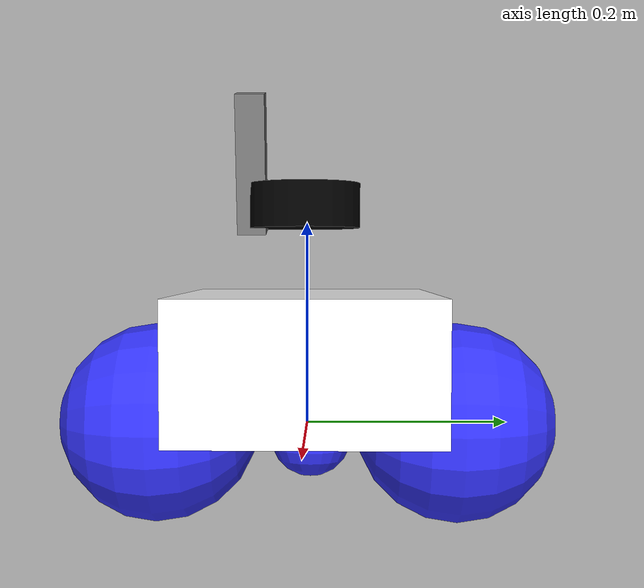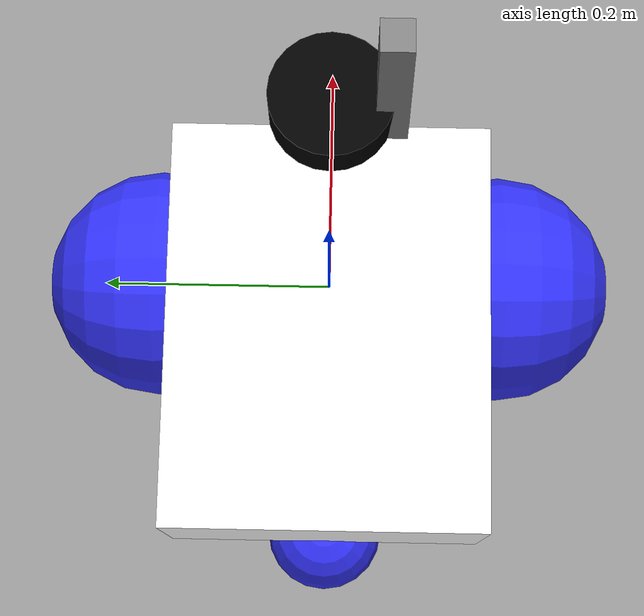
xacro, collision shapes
<?xml version="1.0" ?>
<robot name='robot' xmlns:xacro="http://ros.org/wiki/xacro">

    <xacro:include filename="$(find robot_description_sensor)/urdf/gazebo.urdf.xacro" />
    <xacro:include filename="$(find robot_description_sensor)/urdf/lidar.urdf.xacro" />
    <xacro:include filename="$(find robot_description_sensor)/urdf/depth.urdf.xacro" />
    <xacro:include filename="$(find robot_description_sensor)/urdf/imu.urdf.xacro" />
    <!--xacro:include filename="$(find robot_description)/urdf/lidar.urdf.xacro" /-->
    <!--xacro:include filename="$(find robot_description)/urdf/depth.urdf.xacro" /-->

    <xacro:property name="chassis_length" value="0.335"/>
    <xacro:property name="chassis_width" value="0.265"/>
    <xacro:property name="chassis_height" value="0.138"/>
    <xacro:property name="wheel_radius" value="0.1"/>
    <xacro:property name="wheel_thickness" value="0.026"/>
    <xacro:property name="wheel_mass" value="0.05"/>
    <xacro:property name="wheel_offset_x" value="0.226"/>
    <xacro:property name="wheel_offset_y" value="0.1485"/>
    <xacro:property name="wheel_offset_z" value="0.01"/>
    <xacro:property name="caster_wheel_radius" value="0.05"/>
    <xacro:property name="caster_wheel_mass" value="0.01"/>
    <xacro:property name="caster_wheel_offset_x" value="0.01"/>
    <xacro:property name="caster_wheel_offset_z" value="${wheel_offset_z - wheel_radius + caster_wheel_radius}"/>
    <xacro:property name="mass" value="1.0"/>

    <material name="white">
        <color rgba="1 1 1 1" />
    </material>

    <material name="orange">
        <color rgba="1 0.3 0.1 1"/>
    </material>

    <material name="blue">
        <color rgba="0.2 0.2 1 1"/>
    </material>

    <material name="black">
        <color rgba="0 0 0 1"/>
    </material>

    <material name="red">
        <color rgba="1 0 0 1"/>
    </material>

    <link name="base_link">
    </link>

    <link name="base_footprint">
    </link>

    <joint name="base_footprint_joint" type="fixed">
        <parent link="base_link"/>
        <child link="base_footprint"/>
        <origin xyz="0 0 -0.138" rpy="0 0 0"/>
    </joint>

    <joint name="chassis_joint" type="fixed">
        <parent link="base_link"/>
        <child link="chassis"/>
        <origin xyz="${-wheel_offset_x} 0 ${-wheel_offset_z}"/>
    </joint>

    <link name='chassis'>

    <inertial>
        <origin xyz="${chassis_length/2} 0 ${chassis_height/2}" rpy="0 0 0"/>
        <mass value="${mass}" />
        <inertia ixx="${(1/12) * mass * (chassis_width*chassis_width+chassis_height*chassis_height)}" ixy="0.0" ixz="0.0"
                 iyy="${(1/12) * mass * (chassis_length*chassis_length+chassis_height*chassis_height)}" iyz="0.0"
                 izz="${(1/12) * mass * (chassis_length*chassis_length+chassis_width*chassis_width)}" />
    </inertial>
    <visual>
        <origin xyz="${chassis_length/3} 0 ${chassis_height/2}"/>
        <geometry>
            <box size="${chassis_length} ${chassis_width} ${chassis_height}"/>
        </geometry>
        <material name="white"/>
    </visual>
    <collision>
        <origin xyz="${chassis_length/2} 0 ${chassis_height/2}"/>
        <geometry>
            <box size="${chassis_length} ${chassis_width} ${chassis_height}"/>
        </geometry>
    </collision>
    </link>

    <gazebo reference="chassis">
        <material>Gazebo/Orange</material>
    </gazebo>

    <joint name="left_wheel_joint" type="continuous">
        <parent link="base_link"/>
        <child link="left_wheel"/>
        <origin xyz="0 ${wheel_offset_y} 0" rpy="-${pi/2} 0 0" />
        <axis xyz="0 0 1"/>
    </joint>

    <link name="left_wheel">
        <visual>
            <geometry>
                <cylinder radius="${wheel_radius}" length="${wheel_thickness}"/>
            </geometry>
            <material name="blue"/>
        </visual>
        <collision>
            <geometry> length="0.04
                <sphere radius="${wheel_radius}"/>
            </geometry>
        </collision>
        <inertial>
            <origin xyz="0 0 0" rpy="0 0 0"/>
            <mass value="${wheel_mass}" />
            <inertia ixx="${(1/12) * wheel_mass * (3*wheel_radius*wheel_radius + wheel_thickness*wheel_thickness)}" ixy="0.0" ixz="0.0"
                     iyy="${(1/12) * wheel_mass * (3*wheel_radius*wheel_radius + wheel_thickness*wheel_thickness)}" iyz="0.0"
                     izz="${(1/2) * wheel_mass * (wheel_radius*wheel_radius)}" />
        </inertial>
    </link>

    <joint name="right_wheel_joint" type="continuous">
        <parent link="base_link"/>
        <child link="right_wheel"/>
        <origin xyz="0 ${-wheel_offset_y} 0" rpy="${pi/2} 0 0" />
        <axis xyz="0 0 -1"/>
    </joint>

    <link name="right_wheel">
        <visual>
            <geometry>
                <cylinder radius="${wheel_radius}" length="${wheel_thickness}"/>
            </geometry>
            <material name="blue"/>
        </visual>
        <collision>
            <geometry>
                <sphere radius="${wheel_radius}"/>
            </geometry>
        </collision>
        <inertial>
            <origin xyz="0 0 0" rpy="0 0 0"/>
            <mass value="${wheel_mass}" />
            <inertia ixx="${(1/12) * wheel_mass * (3*wheel_radius*wheel_radius + wheel_thickness*wheel_thickness)}" ixy="0.0" ixz="0.0"
                     iyy="${(1/12) * wheel_mass * (3*wheel_radius*wheel_radius + wheel_thickness*wheel_thickness)}" iyz="0.0"
                     izz="${(1/2) * wheel_mass * (wheel_radius*wheel_radius)}" />
        </inertial>
    </link>

    <gazebo reference="right_wheel">
        <material>Gazebo/Blue</material>
    </gazebo>

    <joint name="caster_wheel_joint" type="fixed">
        <parent link="chassis"/>
        <child link="caster_wheel"/>
        <origin xyz="${caster_wheel_offset_x} 0 ${caster_wheel_offset_z}"/>
    </joint>

    <link name="caster_wheel">
        <visual>
            <geometry>
                <sphere radius="${caster_wheel_radius}"/>
            </geometry>
            <material name="blue"/>
        </visual>
        <collision>
            <geometry>
                <sphere radius="${caster_wheel_radius}"/>
            </geometry>
        </collision>
        <inertial>
            <origin xyz="0 0 0" rpy="0 0 0"/>
            <mass value="${caster_wheel_mass}" />
            <inertia ixx="${(2/5) * caster_wheel_mass * (caster_wheel_radius*caster_wheel_radius)}" ixy="0.0" ixz="0.0"
                     iyy="${(2/5) * caster_wheel_mass * (caster_wheel_radius*caster_wheel_radius)}" iyz="0.0"
                     izz="${(2/5) * caster_wheel_mass * (caster_wheel_radius*caster_wheel_radius)}" />
        </inertial>
    </link>

    <gazebo reference="caster_wheel">
        <material>Gazebo/White</material>
        <mu1 value="0.001"/>
        <mu2 value="0.001"/>
    </gazebo>

    <link name="vasa_link">
        <visual>
            <geometry>
                <mesh filename="/home/mar/ros2_ws2/install/unique_robot/share/unique_robot/urdf/vasa.stl"/>
            </geometry>
            <material name="red"/>
        </visual>
        <inertial>
            <origin xyz="0 0 0" rpy="0 0 0"/>
            <mass value="0.116" />
            <inertia ixx="${(1/12) * 0.116 * (0.026*0.026+0.029*0.029)}" ixy="0.0" ixz="0.0"
                     iyy="${(1/12) * 0.116 * (0.124*0.124+0.029*0.029)}" iyz="0.0"
                     izz="${(1/12) * 0.116 * (0.124*0.124+0.026*0.026)}" />
        </inertial>
    <!-- Остальные параметры звена, такие как инерция, масса и т.д., также могут быть указаны здесь -->
    </link>

    <joint name="base_to_vasa_joint" type="fixed">
        <parent link="base_link"/>
        <child link="vasa_link"/>
        <origin xyz="-0.15 0 ${(chassis_height+wheel_radius)/2}"/>
        <!-- Другие параметры сочленения -->
    </joint>
    <gazebo reference="vasa_link">
        <material>Gazebo/White</material>
        <mu1 value="0.001"/>
        <mu2 value="0.001"/>
    </gazebo>

</robot>

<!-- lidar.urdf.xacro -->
<robot xmlns:xacro="http://www.ros.org/wiki/xacro">

    <joint name="laser_joint" type="fixed">
        <parent link="base_link"/>
        <child link="laser_frame"/>
        <origin xyz="0.1 0 0.212" rpy="0 0 0"/>
    </joint>

    <link name="laser_frame">
        <visual>
            <origin xyz="-0.07 0 -0.01"/>
            <geometry>
                <cylinder radius="0.05" length="0.04"/>
            </geometry>
            <material name="black"/>
        </visual>
        <visual>
            <origin xyz="-0.07 0 -0.05"/>
            <geometry>
                <cylinder radius="0.01" length="0.1"/>
            </geometry>
            <material name="black"/>
        </visual>
        <collision>
            <geometry>
                <cylinder radius="0.05" length="0.04"/>
            </geometry>
        </collision>
        <inertial>
            <origin xyz="0 0 0" rpy="0 0 0"/>
            <mass value="0.1" />
            <inertia ixx="${(1/12) * 0.1 * (3*0.05*0.05 + 0.04*0.04)}" ixy="0.0" ixz="0.0"
                     iyy="${(1/12) * 0.1 * (3*0.05*0.05 + 0.04*0.04)}" iyz="0.0"
                     izz="${(1/2) * 0.1 * (0.05*0.05)}" />
        </inertial>
    </link>

    <gazebo reference="laser_frame">
        <material>Gazebo/Black</material>

        <sensor name='laser_sensor_frame' type='gpu_lidar'>"
            <gz_frame_id>robot/laser_frame</gz_frame_id>
            <pose> 0 0 0 0 0 0 </pose>
            <visualize>true</visualize>
            <always_on>true</always_on>
            <update_rate>10</update_rate>
            <ray>
                <scan>
                    <horizontal>
                        <samples>360</samples>
                        <min_angle>-3.14</min_angle>
                        <max_angle>3.14</max_angle>
                    </horizontal>
                </scan>
                <range>
                    <min>0.3</min>
                    <max>12</max>
                </range>
                <noise>
                    <type>gaussian</type>
                    <mean>0.0</mean>
                    <stddev>0.007</stddev>
                </noise>
            </ray>
        </sensor>
    </gazebo>
</robot>

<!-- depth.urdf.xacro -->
<robot xmlns:xacro="http://www.ros.org/wiki/xacro">

    <xacro:property name="M_PI" value="3.1415926535897931" />

    <joint name="depth_joint" type="fixed">
        <parent link="base_link"/>
        <child link="depth_frame"/>
        <origin xyz="0.1 0 0.25" rpy="0 0.2 0"/>
    </joint>

    <material name="aluminum">
      <color rgba="0.5 0.5 0.5 1"/>
    </material>

    <link name="depth_frame">
        <visual>
            <origin xyz="-0.0465 0 -0.03" rpy="${M_PI/2} 0 ${M_PI/2}"/>
            <geometry>
                <mesh filename="file://$(find robot_description_sensor)/urdf/d455.stl" scale="0.001 0.001 0.001"/>
                <!--box size="0.026 0.124 0.029"/-->
            </geometry>
            <material name="aluminum"/>
        </visual>
        <collision>
            <origin xyz="0.00465 -0.0475 0" rpy="${M_PI/2} 0 ${M_PI/2}"/>
            <geometry>
                <box size="0.026 0.124 0.029"/>
            </geometry>
        </collision>
        <inertial>
            <origin xyz="0 0 0" rpy="0 0 0"/>
            <mass value="0.116" />
            <inertia ixx="${(1/12) * 0.116 * (0.026*0.026+0.029*0.029)}" ixy="0.0" ixz="0.0"
                     iyy="${(1/12) * 0.116 * (0.124*0.124+0.029*0.029)}" iyz="0.0"
                     izz="${(1/12) * 0.116 * (0.124*0.124+0.026*0.026)}" />
        </inertial>
    </link>

    <gazebo reference="depth_frame">
        <sensor name='depth_sensor_frame' type='depth_camera'>"
            <gz_frame_id>robot/depth_frame</gz_frame_id>
            <pose> 0 0 0 0 0 0 </pose>
            <always_on>true</always_on>
            <update_rate>10</update_rate>
            <camera>
                <horizontal_fov>1.51843645</horizontal_fov>
                <image>
                    <width>848</width>
                    <height>480</height>
                    <format>R_FLOAT32</format>
                </image>
                <clip>
                    <near>0.1</near>
                    <far>10</far>
                </clip>
                <lens>
                    <intrinsics>
                    <fx>421.61578369140625</fx>
                    <fy>421.61578369140625</fy>
                    <cx>422.2854309082031</cx>
                    <cy>236.57237243652344</cy>
                    <s>0</s>
                    </intrinsics>
                </lens>
                <noise>
                    <type>gaussian</type>
                    <mean>0.0</mean>
                    <stddev>0.007</stddev>
                </noise>
            </camera>
        </sensor>
        <sensor name="color_sensor_frame" type="camera">
            <gz_frame_id>robot/depth_frame</gz_frame_id>
            <pose>0 0 0 0 0 0</pose>
            <update_rate>30</update_rate>
            <always_on>true</always_on>
            <camera>
                <horizontal_fov>1.20427718</horizontal_fov>
                <image>
                    <width>848</width>
                    <height>480</height>
                </image>
                <clip>
                    <near>0.1</near>
                    <far>50</far>
                </clip>
                <lens>
                    <intrinsics>
                    <fx>615.9603271484375</fx>
                    <fy>616.227294921875</fy>
                    <cx>419.83026123046875</cx>
                    <cy>245.1431427001953</cy>
                    <s>0</s>
                    </intrinsics>
                </lens>
            </camera>
        </sensor>
    </gazebo>
</robot>

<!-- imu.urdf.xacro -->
<robot xmlns:xacro="http://www.ros.org/wiki/xacro">

    <joint name="imu_joint" type="fixed">
        <parent link="base_link"/>
        <child link="imu_frame"/>
        <origin xyz="0.1 0 0.212" rpy="0 0 0"/>
    </joint>

    <link name="imu_frame">
        <visual>
            <origin xyz="-0.15 -0.05 -0.06"/>
            <geometry>
                <sphere radius="0.025"/>
            </geometry>
            <material name="white"/>
        </visual>
        <collision>
            <geometry>
                <cylinder radius="0.05" length="0.04"/>
            </geometry>
        </collision>
        <inertial>
            <origin xyz="0 0 0" rpy="0 0 0"/>
            <mass value="0.1" />
            <inertia ixx="${(1/12) * 0.1 * (3*0.05*0.05 + 0.04*0.04)}" ixy="0.0" ixz="0.0"
                     iyy="${(1/12) * 0.1 * (3*0.05*0.05 + 0.04*0.04)}" iyz="0.0"
                     izz="${(1/2) * 0.1 * (0.05*0.05)}" />
        </inertial>
    </link>

    <gazebo reference="imu_frame">
        <material>Gazebo/Black</material>

        <sensor name="imu_sensor" type="imu">
            <always_on>1</always_on>
            <update_rate>1</update_rate>
            <visualize>true</visualize>
            <topic>imu</topic>
        </sensor>
    </gazebo>
</robot>
